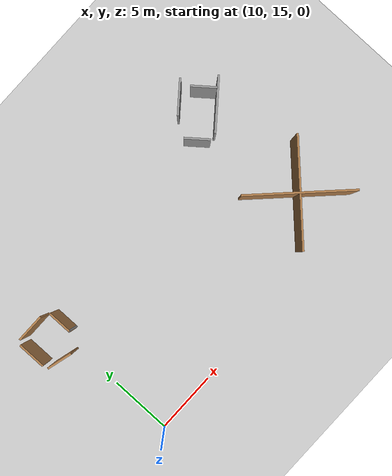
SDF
<sdf version="1.6">
 <world name="default">
  <model name="ground_plane">
   <static>1</static>
   <link name="link">
    <collision name="collision">
     <geometry><plane><normal>0 0 1</normal><size>100 100</size></plane></geometry>
     <surface><friction><ode><mu>100</mu><mu2>50</mu2></ode></friction></surface>
    </collision>
    <visual name="visual">
     <cast_shadows>0</cast_shadows>
     <geometry><plane><normal>0 0 1</normal><size>100 100</size></plane></geometry>
     <material>
      <script><uri>file://media/materials/scripts/gazebo.material</uri><name>Gazebo/Grey</name></script>
     </material>
    </visual>
   </link>
  </model>
  <model name="obs2_4">
   <pose>29.7414 29.2834 0 0 0 -1.67982</pose>
   <link name="Wall_0">
    <collision name="Wall_0_Collision">
     <geometry><box><size>2 0.15 2.5</size></box></geometry>
     <pose>0 0 1.25 0 -0 0</pose>
    </collision>
    <visual name="Wall_0_Visual">
     <pose>0 0 1.25 0 -0 0</pose>
     <geometry><box><size>2 0.15 2.5</size></box></geometry>
     <material>
      <script><uri>file://media/materials/scripts/gazebo.material</uri><name>Gazebo/Grey</name></script>
      <ambient>1 1 1 1</ambient>
     </material>
    </visual>
    <pose>-0.796332 1.10862 0 0 -0 0.785398</pose>
   </link>
   <link name="Wall_2">
    <collision name="Wall_2_Collision">
     <geometry><box><size>4.25 0.15 2.5</size></box></geometry>
     <pose>0 0 1.25 0 -0 0</pose>
    </collision>
    <visual name="Wall_2_Visual">
     <pose>0 0 1.25 0 -0 0</pose>
     <geometry><box><size>4.25 0.15 2.5</size></box></geometry>
     <material>
      <script><uri>file://media/materials/scripts/gazebo.material</uri><name>Gazebo/Grey</name></script>
      <ambient>1 1 1 1</ambient>
     </material>
    </visual>
    <pose>0.773928 0.982661 0 0 0 -0.785398</pose>
   </link>
   <link name="Wall_4">
    <collision name="Wall_4_Collision">
     <geometry><box><size>2.75 0.15 2.5</size></box></geometry>
     <pose>0 0 1.25 0 -0 0</pose>
    </collision>
    <visual name="Wall_4_Visual">
     <pose>0 0 1.25 0 -0 0</pose>
     <geometry><box><size>2.75 0.15 2.5</size></box></geometry>
     <material>
      <script><uri>file://media/materials/scripts/gazebo.material</uri><name>Gazebo/Grey</name></script>
      <ambient>1 1 1 1</ambient>
     </material>
    </visual>
    <pose>-1.45556 -0.740711 0 0 0 -0.785398</pose>
   </link>
   <link name="Wall_6">
    <collision name="Wall_6_Collision">
     <geometry><box><size>2 0.15 2.5</size></box></geometry>
     <pose>0 0 1.25 0 -0 0</pose>
    </collision>
    <visual name="Wall_6_Visual">
     <pose>0 0 1.25 0 -0 0</pose>
     <geometry><box><size>2 0.15 2.5</size></box></geometry>
     <material>
      <script><uri>file://media/materials/scripts/gazebo.material</uri><name>Gazebo/Grey</name></script>
      <ambient>1 1 1 1</ambient>
     </material>
    </visual>
    <pose>1.72073 -1.77816 0 0 -0 0.785398</pose>
   </link>
   <static>1</static>
  </model>
  <model name="obs1_9">
   <pose>9.5575 25.7672 0 0 -0 0</pose>
   <link name="Wall_10">
    <collision name="Wall_10_Collision">
     <geometry><box><size>2 0.15 2.5</size></box></geometry>
     <pose>0 0 1.25 0 -0 0</pose>
    </collision>
    <visual name="Wall_10_Visual">
     <pose>0 0 1.25 0 -0 0</pose>
     <geometry><box><size>2 0.15 2.5</size></box></geometry>
     <material>
      <script><uri>file://media/materials/scripts/gazebo.material</uri><name>Gazebo/Wood</name></script>
      <ambient>1 1 1 1</ambient>
     </material>
    </visual>
    <pose>-0.505188 -1.46687 0 0 0 -0.261799</pose>
   </link>
   <link name="Wall_2">
    <collision name="Wall_2_Collision">
     <geometry><box><size>2.25 0.15 2.5</size></box></geometry>
     <pose>0 0 1.25 0 -0 0</pose>
    </collision>
    <visual name="Wall_2_Visual">
     <pose>0 0 1.25 0 -0 0</pose>
     <geometry><box><size>2.25 0.15 2.5</size></box></geometry>
     <material>
      <script><uri>file://media/materials/scripts/gazebo.material</uri><name>Gazebo/Wood</name></script>
      <ambient>1 1 1 1</ambient>
     </material>
    </visual>
    <pose>-1.58039 0.313508 0 0 0 -1.5708</pose>
   </link>
   <link name="Wall_5">
    <collision name="Wall_5_Collision">
     <geometry><box><size>2.25 0.15 2.5</size></box></geometry>
     <pose>0 0 1.25 0 -0 0</pose>
    </collision>
    <visual name="Wall_5_Visual">
     <pose>0 0 1.25 0 -0 0</pose>
     <geometry><box><size>2.25 0.15 2.5</size></box></geometry>
     <material>
      <script><uri>file://media/materials/scripts/gazebo.material</uri><name>Gazebo/Wood</name></script>
      <ambient>1 1 1 1</ambient>
     </material>
    </visual>
    <pose>-0.185262 1.72313 0 0 -0 0</pose>
   </link>
   <link name="Wall_7">
    <collision name="Wall_7_Collision">
     <geometry><box><size>2 0.15 2.5</size></box></geometry>
     <pose>0 0 1.25 0 -0 0</pose>
    </collision>
    <visual name="Wall_7_Visual">
     <pose>0 0 1.25 0 -0 0</pose>
     <geometry><box><size>2 0.15 2.5</size></box></geometry>
     <material>
      <script><uri>file://media/materials/scripts/gazebo.material</uri><name>Gazebo/Wood</name></script>
      <ambient>1 1 1 1</ambient>
     </material>
    </visual>
    <pose>1.58039 0.398833 0 0 0 -1.5708</pose>
   </link>
   <link name="Wall_8">
    <collision name="Wall_8_Collision">
     <geometry><box><size>0.15 0.15 2.5</size></box></geometry>
     <pose>0 0 1.25 0 -0 0</pose>
    </collision>
    <visual name="Wall_8_Visual">
     <pose>0 0 1.25 0 -0 0</pose>
     <geometry><box><size>0.15 0.15 2.5</size></box></geometry>
     <material>
      <script><uri>file://media/materials/scripts/gazebo.material</uri><name>Gazebo/Grey</name></script>
      <ambient>1 1 1 1</ambient>
     </material>
    </visual>
    <pose>1.58039 -0.526167 0 0 -0 0</pose>
   </link>
   <static>1</static>
  </model>
  <model name="obs3_14">
   <pose>29.9429 19.5649 0 0 -0 0</pose>
   <link name="Wall_0">
    <collision name="Wall_0_Collision">
     <geometry><box><size>8.63528 0.15 2.5</size></box></geometry>
     <pose>0 0 1.25 0 -0 0</pose>
    </collision>
    <visual name="Wall_0_Visual">
     <pose>0 0 1.25 0 -0 0</pose>
     <geometry><box><size>8.63528 0.15 2.5</size></box></geometry>
     <material>
      <script><uri>file://media/materials/scripts/gazebo.material</uri><name>Gazebo/Wood</name></script>
      <ambient>1 1 1 1</ambient>
     </material>
    </visual>
    <pose>0 0 0 0 0 -0.785398</pose>
   </link>
   <link name="Wall_2">
    <collision name="Wall_2_Collision">
     <geometry><box><size>8.63528 0.15 2.5</size></box></geometry>
     <pose>0 0 1.25 0 -0 0</pose>
    </collision>
    <visual name="Wall_2_Visual">
     <pose>0 0 1.25 0 -0 0</pose>
     <geometry><box><size>8.63528 0.15 2.5</size></box></geometry>
     <material>
      <script><uri>file://media/materials/scripts/gazebo.material</uri><name>Gazebo/Wood</name></script>
      <ambient>1 1 1 1</ambient>
     </material>
    </visual>
    <pose>0 0 0 0 0 -2.35619</pose>
   </link>
   <static>1</static>
  </model>
 </world>
</sdf>
